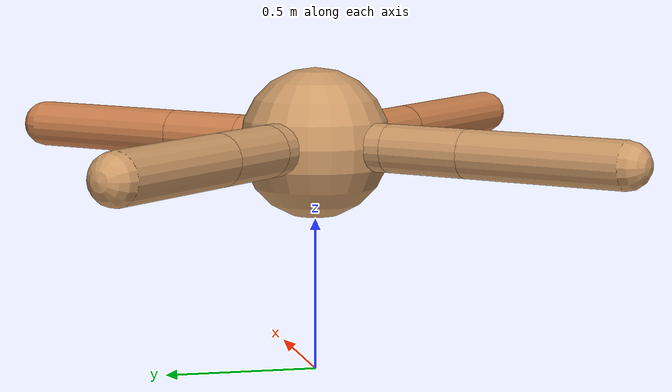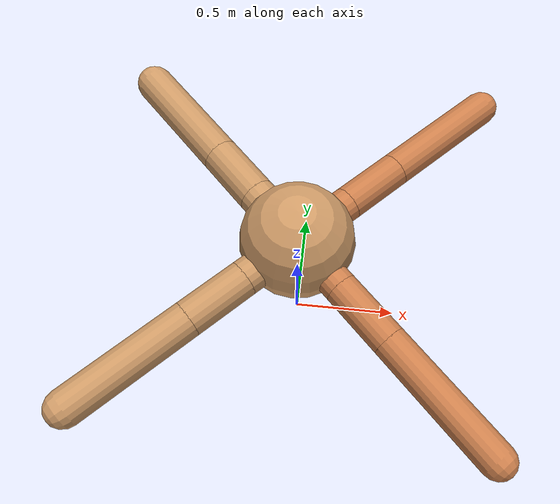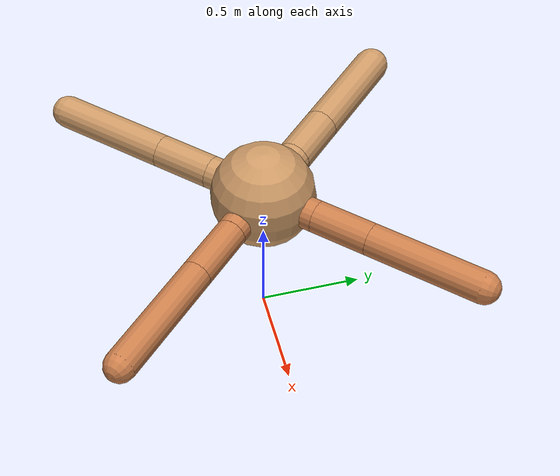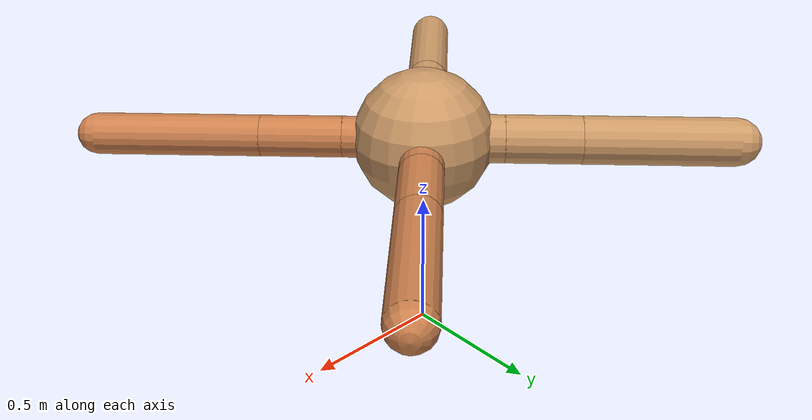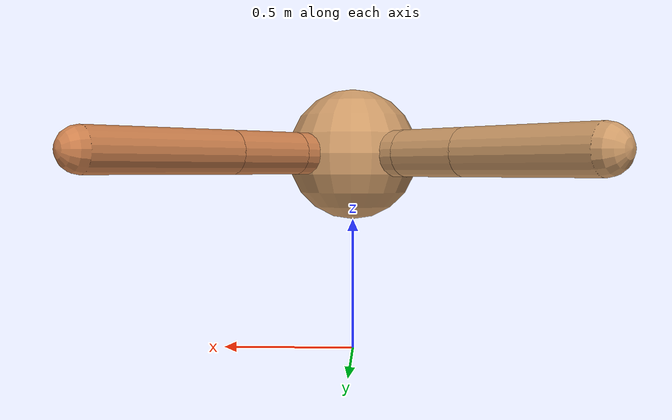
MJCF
<?xml version="1.0" ?>
<mujoco model="ant">

	<compiler angle="degree" coordinate="local" inertiafromgeom="true"/>

	<option integrator="RK4" timestep="0.01"/>

	<custom>

		<numeric data="0.0 0.0 0.55 1.0 0.0 0.0 0.0 0.0 1.0 0.0 -1.0 0.0 -1.0 0.0 1.0" name="init_qpos"/>

	</custom>

	<default>

		<joint armature="1" damping="1" limited="true"/>

		<geom conaffinity="0" condim="3" density="5.0" friction="1.5 0.1 0.1" margin="0.01" rgba="0.8 0.6 0.4 1"/>

	</default>

	<worldbody>

		<body name="torso" pos="0 0 0.75">

			<geom name="torso_geom" pos="0 0 0" size="0.24743190221377354" type="sphere"/>

			<!--joint armature="0" damping="0" limited="false" margin="0.01" name="root" pos="0 0 0" type="free"/-->

			<body name="front_left_leg" pos="0 0 0">

				<geom fromto="0 0 0 0.2 0.2 0" name="aux_1_geom" size="0.07618094850317567" type="capsule" rgba=".8 .5 .3 1"/>

				<body name="aux_1" pos="0.2 0.2 0">

					<joint axis="0 0 1" name="hip_1" pos="0.0 0.0 0.0" range="-40 40" type="hinge"/>

					<geom fromto="0 0 0 0.19474305898588748 0.19474305898588748 0" name="left_leg_geom" size="0.07618094850317567" type="capsule" rgba=".8 .5 .3 1"/>

					<body pos="0.19474305898588748 0.19474305898588748 0" name="front_left_foot">

						<joint axis="-1 1 0" name="ankle_1" pos="0.0 0.0 0.0" range="30 100" type="hinge"/>

						<geom fromto="0 0 0 0.38948611797177496 0.38948611797177496 0" name="left_ankle_geom" size="0.07618094850317567" type="capsule" rgba=".8 .5 .3 1"/>

					</body>

				</body>

			</body>

			<body name="front_right_leg" pos="0 0 0">

				<geom fromto="0 0 0 -0.2 0.2 0" name="aux_2_geom" size="0.08519535688631301" type="capsule"/>

				<body name="aux_2" pos="-0.2 0.2 0">

					<joint axis="0 0 1" name="hip_2" pos="0.0 0.0 0.0" range="-40 40" type="hinge"/>

					<geom fromto="0 0 0 -0.18917667723056336 0.18917667723056336 0" name="right_leg_geom" size="0.08519535688631301" type="capsule"/>

					<body pos="-0.18917667723056336 0.18917667723056336 0" name="front_right_foot">

						<joint axis="1 1 0" name="ankle_2" pos="0.0 0.0 0.0" range="-100 -30" type="hinge"/>

						<geom fromto="0 0 0 -0.3783533544611267 0.3783533544611267 0" name="right_ankle_geom" size="0.08519535688631301" type="capsule"/>

					</body>

				</body>

			</body>

			<body name="left_back_leg" pos="0 0 0">

				<geom fromto="0 0 0 -0.2 -0.2 0" name="aux_3_geom" size="0.07878976578849989" type="capsule"/>

				<body name="aux_3" pos="-0.2 -0.2 0">

					<joint axis="0 0 1" name="hip_3" pos="0.0 0.0 0.0" range="-40 40" type="hinge"/>

					<geom fromto="0 0 0 -0.19710843974267458 -0.19710843974267458 0" name="back_leg_geom" size="0.07878976578849989" type="capsule"/>

					<body pos="-0.19710843974267458 -0.19710843974267458 0" name="left_back_foot">

						<joint axis="-1 1 0" name="ankle_3" pos="0.0 0.0 0.0" range="-100 -30" type="hinge"/>

						<geom fromto="0 0 0 -0.39421687948534917 -0.39421687948534917 0" name="third_ankle_geom" size="0.07878976578849989" type="capsule"/>

					</body>

				</body>

			</body>

			<body name="right_back_leg" pos="0 0 0">

				<geom fromto="0 0 0 0.2 -0.2 0" name="aux_4_geom" size="0.07282312629710706" type="capsule" rgba=".8 .5 .3 1"/>

				<body name="aux_4" pos="0.2 -0.2 0">

					<joint axis="0 0 1" name="hip_4" pos="0.0 0.0 0.0" range="-40 40" type="hinge"/>

					<geom fromto="0 0 0 0.20360461904513288 -0.20360461904513288 0" name="rightback_leg_geom" size="0.07282312629710706" type="capsule" rgba=".8 .5 .3 1"/>

					<body pos="0.20360461904513288 -0.20360461904513288 0" name="right_back_foot">

						<joint axis="1 1 0" name="ankle_4" pos="0.0 0.0 0.0" range="30 100" type="hinge"/>

						<geom fromto="0 0 0 0.40720923809026577 -0.40720923809026577 0" name="fourth_ankle_geom" size="0.07282312629710706" type="capsule" rgba=".8 .5 .3 1"/>

					</body>

				</body>

			</body>

		</body>

	</worldbody>

	<actuator>

		<motor ctrllimited="true" ctrlrange="-1.0 1.0" joint="hip_4" gear="150"/>

		<motor ctrllimited="true" ctrlrange="-1.0 1.0" joint="ankle_4" gear="150"/>

		<motor ctrllimited="true" ctrlrange="-1.0 1.0" joint="hip_1" gear="150"/>

		<motor ctrllimited="true" ctrlrange="-1.0 1.0" joint="ankle_1" gear="150"/>

		<motor ctrllimited="true" ctrlrange="-1.0 1.0" joint="hip_2" gear="150"/>

		<motor ctrllimited="true" ctrlrange="-1.0 1.0" joint="ankle_2" gear="150"/>

		<motor ctrllimited="true" ctrlrange="-1.0 1.0" joint="hip_3" gear="150"/>

		<motor ctrllimited="true" ctrlrange="-1.0 1.0" joint="ankle_3" gear="150"/>

	</actuator>

</mujoco>
